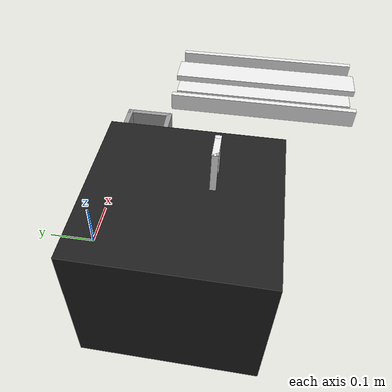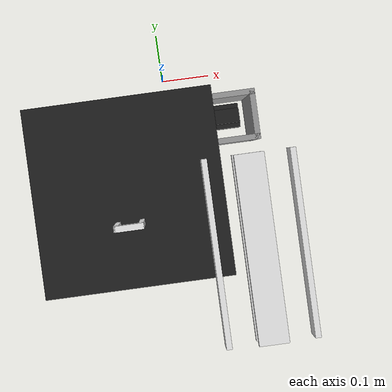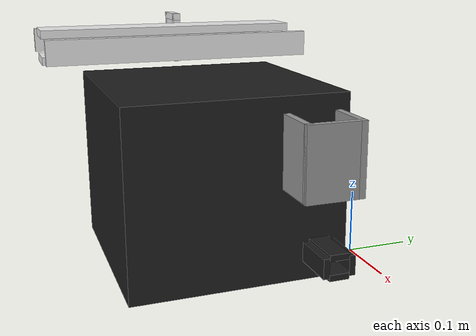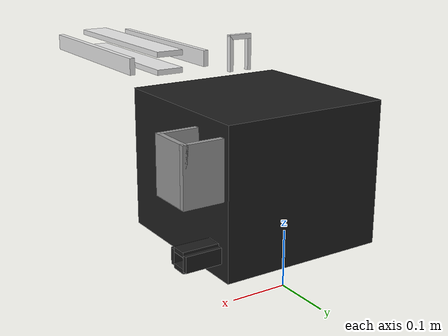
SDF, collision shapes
<?xml version='1.0'?>
<sdf version='1.7'>
  <model name='milk_crate_and_node'>
    <link name='link_0'>
      <inertial>
        <mass>1</mass>
        <inertia>
          <ixx>0.166667</ixx>
          <ixy>0</ixy>
          <ixz>0</ixz>
          <iyy>0.166667</iyy>
          <iyz>0</iyz>
          <izz>0.166667</izz>
        </inertia>
        <pose>0 0 0 0 -0 0</pose>
      </inertial>
      <pose>0.11 -0.15 0.2 0 -0 0</pose>
      <gravity>1</gravity>
      <self_collide>0</self_collide>
      <kinematic>0</kinematic>
      <enable_wind>0</enable_wind>
      <visual name='visual'>
        <pose>0 0 0 0 -0 0</pose>
        <geometry>
          <box>
            <size>0.09 0.01 0.11</size>
          </box>
        </geometry>
        <material>
          <lighting>1</lighting>
          <script>
            <uri>file://media/materials/scripts/gazebo.material</uri>
            <name>Gazebo/Grey</name>
          </script>
          <shader type='pixel'>
            <normal_map>__default__</normal_map>
          </shader>
          <ambient>0.3 0.3 0.3 1</ambient>
          <diffuse>0.7 0.7 0.7 1</diffuse>
          <specular>0.01 0.01 0.01 1</specular>
          <emissive>0 0 0 1</emissive>
        </material>
        <transparency>0</transparency>
        <cast_shadows>1</cast_shadows>
      </visual>
      <collision name='collision'>
        <laser_retro>0</laser_retro>
        <max_contacts>10</max_contacts>
        <pose>0 0 0 0 -0 0</pose>
        <geometry>
          <box>
            <size>0.09 0.01 0.11</size>
          </box>
        </geometry>
        <surface>
          <friction>
            <ode>
              <mu>1</mu>
              <mu2>1</mu2>
              <fdir1>0 0 0</fdir1>
              <slip1>0</slip1>
              <slip2>0</slip2>
            </ode>
            <torsional>
              <coefficient>1</coefficient>
              <patch_radius>0</patch_radius>
              <surface_radius>0</surface_radius>
              <use_patch_radius>1</use_patch_radius>
              <ode>
                <slip>0</slip>
              </ode>
            </torsional>
          </friction>
          <bounce>
            <restitution_coefficient>0</restitution_coefficient>
            <threshold>1e+06</threshold>
          </bounce>
          <contact>
            <collide_without_contact>0</collide_without_contact>
            <collide_without_contact_bitmask>1</collide_without_contact_bitmask>
            <collide_bitmask>1</collide_bitmask>
            <ode>
              <soft_cfm>0</soft_cfm>
              <soft_erp>0.2</soft_erp>
              <kp>1e+13</kp>
              <kd>1</kd>
              <max_vel>0.01</max_vel>
              <min_depth>0</min_depth>
            </ode>
            <bullet>
              <split_impulse>1</split_impulse>
              <split_impulse_penetration_threshold>-0.01</split_impulse_penetration_threshold>
              <soft_cfm>0</soft_cfm>
              <soft_erp>0.2</soft_erp>
              <kp>1e+13</kp>
              <kd>1</kd>
            </bullet>
          </contact>
        </surface>
      </collision>
    </link>
    <link name='link_0_clone'>
      <inertial>
        <mass>1</mass>
        <inertia>
          <ixx>0.166667</ixx>
          <ixy>0</ixy>
          <ixz>0</ixz>
          <iyy>0.166667</iyy>
          <iyz>0</iyz>
          <izz>0.166667</izz>
        </inertia>
        <pose>0 0 0 0 -0 0</pose>
      </inertial>
      <pose>0.11 -0.07 0.2 0 -0 0</pose>
      <gravity>1</gravity>
      <self_collide>0</self_collide>
      <kinematic>0</kinematic>
      <enable_wind>0</enable_wind>
      <visual name='visual'>
        <pose>0 0 0 0 -0 0</pose>
        <geometry>
          <box>
            <size>0.09 0.01 0.11</size>
          </box>
        </geometry>
        <material>
          <lighting>1</lighting>
          <script>
            <uri>file://media/materials/scripts/gazebo.material</uri>
            <name>Gazebo/Grey</name>
          </script>
          <shader type='pixel'>
            <normal_map>__default__</normal_map>
          </shader>
          <ambient>0.3 0.3 0.3 1</ambient>
          <diffuse>0.7 0.7 0.7 1</diffuse>
          <specular>0.01 0.01 0.01 1</specular>
          <emissive>0 0 0 1</emissive>
        </material>
        <transparency>0</transparency>
        <cast_shadows>1</cast_shadows>
      </visual>
      <collision name='collision'>
        <laser_retro>0</laser_retro>
        <max_contacts>10</max_contacts>
        <pose>0 0 0 0 -0 0</pose>
        <geometry>
          <box>
            <size>0.09 0.01 0.11</size>
          </box>
        </geometry>
        <surface>
          <friction>
            <ode>
              <mu>1</mu>
              <mu2>1</mu2>
              <fdir1>0 0 0</fdir1>
              <slip1>0</slip1>
              <slip2>0</slip2>
            </ode>
            <torsional>
              <coefficient>1</coefficient>
              <patch_radius>0</patch_radius>
              <surface_radius>0</surface_radius>
              <use_patch_radius>1</use_patch_radius>
              <ode>
                <slip>0</slip>
              </ode>
            </torsional>
          </friction>
          <bounce>
            <restitution_coefficient>0</restitution_coefficient>
            <threshold>1e+06</threshold>
          </bounce>
          <contact>
            <collide_without_contact>0</collide_without_contact>
            <collide_without_contact_bitmask>1</collide_without_contact_bitmask>
            <collide_bitmask>1</collide_bitmask>
            <ode>
              <soft_cfm>0</soft_cfm>
              <soft_erp>0.2</soft_erp>
              <kp>1e+13</kp>
              <kd>1</kd>
              <max_vel>0.01</max_vel>
              <min_depth>0</min_depth>
            </ode>
            <bullet>
              <split_impulse>1</split_impulse>
              <split_impulse_penetration_threshold>-0.01</split_impulse_penetration_threshold>
              <soft_cfm>0</soft_cfm>
              <soft_erp>0.2</soft_erp>
              <kp>1e+13</kp>
              <kd>1</kd>
            </bullet>
          </contact>
        </surface>
      </collision>
    </link>
    <link name='link_0_clone_0'>
      <inertial>
        <mass>1</mass>
        <inertia>
          <ixx>0.166667</ixx>
          <ixy>0</ixy>
          <ixz>0</ixz>
          <iyy>0.166667</iyy>
          <iyz>0</iyz>
          <izz>0.166667</izz>
        </inertia>
        <pose>0 0 0 0 -0 0</pose>
      </inertial>
      <pose>0.15 -0.11 0.2 0 -0 1.5708</pose>
      <gravity>1</gravity>
      <self_collide>0</self_collide>
      <kinematic>0</kinematic>
      <enable_wind>0</enable_wind>
      <visual name='visual'>
        <pose>0 0 0 0 -0 0</pose>
        <geometry>
          <box>
            <size>0.09 0.01 0.11</size>
          </box>
        </geometry>
        <material>
          <lighting>1</lighting>
          <script>
            <uri>file://media/materials/scripts/gazebo.material</uri>
            <name>Gazebo/Grey</name>
          </script>
          <shader type='pixel'>
            <normal_map>__default__</normal_map>
          </shader>
          <ambient>0.3 0.3 0.3 1</ambient>
          <diffuse>0.7 0.7 0.7 1</diffuse>
          <specular>0.01 0.01 0.01 1</specular>
          <emissive>0 0 0 1</emissive>
        </material>
        <transparency>0</transparency>
        <cast_shadows>1</cast_shadows>
      </visual>
      <collision name='collision'>
        <laser_retro>0</laser_retro>
        <max_contacts>10</max_contacts>
        <pose>0 0 0 0 -0 0</pose>
        <geometry>
          <box>
            <size>0.09 0.01 0.11</size>
          </box>
        </geometry>
        <surface>
          <friction>
            <ode>
              <mu>1</mu>
              <mu2>1</mu2>
              <fdir1>0 0 0</fdir1>
              <slip1>0</slip1>
              <slip2>0</slip2>
            </ode>
            <torsional>
              <coefficient>1</coefficient>
              <patch_radius>0</patch_radius>
              <surface_radius>0</surface_radius>
              <use_patch_radius>1</use_patch_radius>
              <ode>
                <slip>0</slip>
              </ode>
            </torsional>
          </friction>
          <bounce>
            <restitution_coefficient>0</restitution_coefficient>
            <threshold>1e+06</threshold>
          </bounce>
          <contact>
            <collide_without_contact>0</collide_without_contact>
            <collide_without_contact_bitmask>1</collide_without_contact_bitmask>
            <collide_bitmask>1</collide_bitmask>
            <ode>
              <soft_cfm>0</soft_cfm>
              <soft_erp>0.2</soft_erp>
              <kp>1e+13</kp>
              <kd>1</kd>
              <max_vel>0.01</max_vel>
              <min_depth>0</min_depth>
            </ode>
            <bullet>
              <split_impulse>1</split_impulse>
              <split_impulse_penetration_threshold>-0.01</split_impulse_penetration_threshold>
              <soft_cfm>0</soft_cfm>
              <soft_erp>0.2</soft_erp>
              <kp>1e+13</kp>
              <kd>1</kd>
            </bullet>
          </contact>
        </surface>
      </collision>
    </link>
    <link name='part_1'>
      <inertial>
        <pose>0 0 0 0 -0 0</pose>
        <mass>1e+12</mass>
        <inertia>
          <ixx>1.55914e+10</ixx>
          <ixy>0</ixy>
          <ixz>0</ixz>
          <iyy>1.55914e+10</iyy>
          <iyz>0</iyz>
          <izz>1.8172e+10</izz>
        </inertia>
      </inertial>
      <self_collide>0</self_collide>
      <enable_wind>0</enable_wind>
      <kinematic>0</kinematic>
      <pose>-0.087877 -0.216714 0 0 -0 0</pose>
      <gravity>1</gravity>
      <is_static>1</is_static>
      <frame name='part_1_frame'>
        <pose>0 0 0 0 -0 0</pose>
      </frame>
      <visual name='assembly_visual'>
        <pose>0 0 0 0 -0 0</pose>
        <geometry>
          <mesh>
            <uri>/home/eer/Documents/Software_2024/ROS2/models/milk_crate_and_node/milk_crate_and_node_visual.stl</uri>
            <scale>1 1 1</scale>
          </mesh>
        </geometry>
        <material>
          <shader type='pixel'>
            <normal_map>__default__</normal_map>
          </shader>
          <script>
            <name>Gazebo/Black</name>
            <uri>__default__</uri>
          </script>
          <ambient>0.2 0.2 0.2 1</ambient>
          <diffuse>0.2 0.2 0.2 1</diffuse>
          <specular>0.2 0.2 0.2 1</specular>
          <emissive>0 0 0 1</emissive>
        </material>
        <transparency>0</transparency>
        <cast_shadows>1</cast_shadows>
      </visual>
      <visual name='ModelPreview_23::part_1::visual_3'>
        <pose>0.2 0.14 0.045 1.5708 -0 0</pose>
        <geometry>
          <box>
            <size>0.0702 0.0302 0.0094</size>
          </box>
        </geometry>
        <material>
          <shader type='pixel'>
            <normal_map>__default__</normal_map>
          </shader>
          <script>
            <name>Gazebo/Black</name>
            <uri>__default__</uri>
          </script>
          <ambient>0.2 0.2 0.2 1</ambient>
          <diffuse>0.2 0.2 0.2 1</diffuse>
          <specular>0.2 0.2 0.2 1</specular>
          <emissive>0 0 0 1</emissive>
        </material>
        <transparency>0</transparency>
        <cast_shadows>1</cast_shadows>
      </visual>
      <visual name='ModelPreview_23::part_1::visual_4'>
        <pose>0.2 0.1 0.045 1.5708 -0 0</pose>
        <geometry>
          <box>
            <size>0.0702 0.0302 0.0094</size>
          </box>
        </geometry>
        <material>
          <shader type='pixel'>
            <normal_map>__default__</normal_map>
          </shader>
          <script>
            <name>Gazebo/Black</name>
            <uri>__default__</uri>
          </script>
          <ambient>0.2 0.2 0.2 1</ambient>
          <diffuse>0.2 0.2 0.2 1</diffuse>
          <specular>0.2 0.2 0.2 1</specular>
          <emissive>0 0 0 1</emissive>
        </material>
        <transparency>0</transparency>
        <cast_shadows>1</cast_shadows>
      </visual>
      <visual name='ModelPreview_23::part_1::visual_1'>
        <pose>0.2 0.12 0.06 0 -0 0</pose>
        <geometry>
          <box>
            <size>0.0702 0.0302 0.0094</size>
          </box>
        </geometry>
        <material>
          <shader type='pixel'>
            <normal_map>__default__</normal_map>
          </shader>
          <script>
            <name>Gazebo/Black</name>
            <uri>__default__</uri>
          </script>
          <ambient>0.2 0.2 0.2 1</ambient>
          <diffuse>0.2 0.2 0.2 1</diffuse>
          <specular>0.2 0.2 0.2 1</specular>
          <emissive>0 0 0 1</emissive>
        </material>
        <transparency>0</transparency>
        <cast_shadows>1</cast_shadows>
      </visual>
      <visual name='ModelPreview_23::part_1::visual_2'>
        <pose>0.2 0.12 0.03 0 -0 0</pose>
        <geometry>
          <box>
            <size>0.0702 0.0302 0.0094</size>
          </box>
        </geometry>
        <material>
          <shader type='pixel'>
            <normal_map>__default__</normal_map>
          </shader>
          <script>
            <name>Gazebo/Black</name>
            <uri>__default__</uri>
          </script>
          <ambient>0.2 0.2 0.2 1</ambient>
          <diffuse>0.2 0.2 0.2 1</diffuse>
          <specular>0.2 0.2 0.2 1</specular>
          <emissive>0 0 0 1</emissive>
        </material>
        <transparency>0</transparency>
        <cast_shadows>1</cast_shadows>
      </visual>
      <collision name='collision_6'>
        <laser_retro>0</laser_retro>
        <max_contacts>10</max_contacts>
        <pose>0.2 0.1 0.045 1.5708 -0 0</pose>
        <geometry>
          <box>
            <size>0.0702 0.0302 0.0094</size>
          </box>
        </geometry>
        <surface>
          <friction>
            <ode>
              <mu>1</mu>
              <mu2>1</mu2>
              <fdir1>0 0 0</fdir1>
              <slip1>0</slip1>
              <slip2>0</slip2>
            </ode>
            <torsional>
              <coefficient>1</coefficient>
              <patch_radius>0</patch_radius>
              <surface_radius>0</surface_radius>
              <use_patch_radius>1</use_patch_radius>
              <ode>
                <slip>0</slip>
              </ode>
            </torsional>
          </friction>
          <bounce>
            <restitution_coefficient>0</restitution_coefficient>
            <threshold>1e+06</threshold>
          </bounce>
          <contact>
            <collide_without_contact>0</collide_without_contact>
            <collide_without_contact_bitmask>1</collide_without_contact_bitmask>
            <collide_bitmask>1</collide_bitmask>
            <ode>
              <soft_cfm>0</soft_cfm>
              <soft_erp>0.2</soft_erp>
              <kp>1e+13</kp>
              <kd>1</kd>
              <max_vel>0.01</max_vel>
              <min_depth>0</min_depth>
            </ode>
            <bullet>
              <split_impulse>1</split_impulse>
              <split_impulse_penetration_threshold>-0.01</split_impulse_penetration_threshold>
              <soft_cfm>0</soft_cfm>
              <soft_erp>0.2</soft_erp>
              <kp>1e+13</kp>
              <kd>1</kd>
            </bullet>
          </contact>
        </surface>
      </collision>
      <collision name='collision_3'>
        <laser_retro>0</laser_retro>
        <max_contacts>10</max_contacts>
        <pose>0.2 0.12 0.03 0 -0 0</pose>
        <geometry>
          <box>
            <size>0.0702 0.0302 0.0094</size>
          </box>
        </geometry>
        <surface>
          <friction>
            <ode>
              <mu>1</mu>
              <mu2>1</mu2>
              <fdir1>0 0 0</fdir1>
              <slip1>0</slip1>
              <slip2>0</slip2>
            </ode>
            <torsional>
              <coefficient>1</coefficient>
              <patch_radius>0</patch_radius>
              <surface_radius>0</surface_radius>
              <use_patch_radius>1</use_patch_radius>
              <ode>
                <slip>0</slip>
              </ode>
            </torsional>
          </friction>
          <bounce>
            <restitution_coefficient>0</restitution_coefficient>
            <threshold>1e+06</threshold>
          </bounce>
          <contact>
            <collide_without_contact>0</collide_without_contact>
            <collide_without_contact_bitmask>1</collide_without_contact_bitmask>
            <collide_bitmask>1</collide_bitmask>
            <ode>
              <soft_cfm>0</soft_cfm>
              <soft_erp>0.2</soft_erp>
              <kp>1e+13</kp>
              <kd>1</kd>
              <max_vel>0.01</max_vel>
              <min_depth>0</min_depth>
            </ode>
            <bullet>
              <split_impulse>1</split_impulse>
              <split_impulse_penetration_threshold>-0.01</split_impulse_penetration_threshold>
              <soft_cfm>0</soft_cfm>
              <soft_erp>0.2</soft_erp>
              <kp>1e+13</kp>
              <kd>1</kd>
            </bullet>
          </contact>
        </surface>
      </collision>
      <collision name='collision_5'>
        <laser_retro>0</laser_retro>
        <max_contacts>10</max_contacts>
        <pose>0.2 0.14 0.045 1.5708 -0 0</pose>
        <geometry>
          <box>
            <size>0.0702 0.0302 0.0094</size>
          </box>
        </geometry>
        <surface>
          <friction>
            <ode>
              <mu>1</mu>
              <mu2>1</mu2>
              <fdir1>0 0 0</fdir1>
              <slip1>0</slip1>
              <slip2>0</slip2>
            </ode>
            <torsional>
              <coefficient>1</coefficient>
              <patch_radius>0</patch_radius>
              <surface_radius>0</surface_radius>
              <use_patch_radius>1</use_patch_radius>
              <ode>
                <slip>0</slip>
              </ode>
            </torsional>
          </friction>
          <bounce>
            <restitution_coefficient>0</restitution_coefficient>
            <threshold>1e+06</threshold>
          </bounce>
          <contact>
            <collide_without_contact>0</collide_without_contact>
            <collide_without_contact_bitmask>1</collide_without_contact_bitmask>
            <collide_bitmask>1</collide_bitmask>
            <ode>
              <soft_cfm>0</soft_cfm>
              <soft_erp>0.2</soft_erp>
              <kp>1e+13</kp>
              <kd>1</kd>
              <max_vel>0.01</max_vel>
              <min_depth>0</min_depth>
            </ode>
            <bullet>
              <split_impulse>1</split_impulse>
              <split_impulse_penetration_threshold>-0.01</split_impulse_penetration_threshold>
              <soft_cfm>0</soft_cfm>
              <soft_erp>0.2</soft_erp>
              <kp>1e+13</kp>
              <kd>1</kd>
            </bullet>
          </contact>
        </surface>
      </collision>
      <collision name='collision_2'>
        <laser_retro>0</laser_retro>
        <max_contacts>10</max_contacts>
        <pose>0 0 0.14 0 -0 0</pose>
        <geometry>
          <box>
            <size>0.3302 0.3302 0.2794</size>
          </box>
        </geometry>
        <surface>
          <friction>
            <ode>
              <mu>1</mu>
              <mu2>1</mu2>
              <fdir1>0 0 0</fdir1>
              <slip1>0</slip1>
              <slip2>0</slip2>
            </ode>
            <torsional>
              <coefficient>1</coefficient>
              <patch_radius>0</patch_radius>
              <surface_radius>0</surface_radius>
              <use_patch_radius>1</use_patch_radius>
              <ode>
                <slip>0</slip>
              </ode>
            </torsional>
          </friction>
          <bounce>
            <restitution_coefficient>0</restitution_coefficient>
            <threshold>1e+06</threshold>
          </bounce>
          <contact>
            <collide_without_contact>0</collide_without_contact>
            <collide_without_contact_bitmask>1</collide_without_contact_bitmask>
            <collide_bitmask>1</collide_bitmask>
            <ode>
              <soft_cfm>0</soft_cfm>
              <soft_erp>0.2</soft_erp>
              <kp>1e+13</kp>
              <kd>1</kd>
              <max_vel>0.01</max_vel>
              <min_depth>0</min_depth>
            </ode>
            <bullet>
              <split_impulse>1</split_impulse>
              <split_impulse_penetration_threshold>-0.01</split_impulse_penetration_threshold>
              <soft_cfm>0</soft_cfm>
              <soft_erp>0.2</soft_erp>
              <kp>1e+13</kp>
              <kd>1</kd>
            </bullet>
          </contact>
        </surface>
      </collision>
      <collision name='collision_4'>
        <laser_retro>0</laser_retro>
        <max_contacts>10</max_contacts>
        <pose>0.2 0.12 0.06 0 -0 0</pose>
        <geometry>
          <box>
            <size>0.0702 0.0302 0.0094</size>
          </box>
        </geometry>
        <surface>
          <friction>
            <ode>
              <mu>1</mu>
              <mu2>1</mu2>
              <fdir1>0 0 0</fdir1>
              <slip1>0</slip1>
              <slip2>0</slip2>
            </ode>
            <torsional>
              <coefficient>1</coefficient>
              <patch_radius>0</patch_radius>
              <surface_radius>0</surface_radius>
              <use_patch_radius>1</use_patch_radius>
              <ode>
                <slip>0</slip>
              </ode>
            </torsional>
          </friction>
          <bounce>
            <restitution_coefficient>0</restitution_coefficient>
            <threshold>1e+06</threshold>
          </bounce>
          <contact>
            <collide_without_contact>0</collide_without_contact>
            <collide_without_contact_bitmask>1</collide_without_contact_bitmask>
            <collide_bitmask>1</collide_bitmask>
            <ode>
              <soft_cfm>0</soft_cfm>
              <soft_erp>0.2</soft_erp>
              <kp>1e+13</kp>
              <kd>1</kd>
              <max_vel>0.01</max_vel>
              <min_depth>0</min_depth>
            </ode>
            <bullet>
              <split_impulse>1</split_impulse>
              <split_impulse_penetration_threshold>-0.01</split_impulse_penetration_threshold>
              <soft_cfm>0</soft_cfm>
              <soft_erp>0.2</soft_erp>
              <kp>1e+13</kp>
              <kd>1</kd>
            </bullet>
          </contact>
        </surface>
      </collision>
    </link>
    <model name='multifunction_node'>
      <pose>0 -0.05 0.3 0 -0 0</pose>
      <link name='part_1'>
        <inertial>
          <pose>0 0 0 0 -0 0</pose>
          <mass>1e+12</mass>
          <inertia>
            <ixx>1.34359e+07</ixx>
            <ixy>0</ixy>
            <ixz>0</ixz>
            <iyy>4.04733e+08</iyy>
            <iyz>0</iyz>
            <izz>4.07964e+08</izz>
          </inertia>
        </inertial>
        <self_collide>0</self_collide>
        <enable_wind>0</enable_wind>
        <kinematic>0</kinematic>
        <pose>-0.087877 -0.216714 0 3.14159 -1.57079 3.14159</pose>
        <gravity>1</gravity>
        <visual name='assembly_visual'>
          <pose>0 0 0 0 -0 0</pose>
          <geometry>
            <mesh>
              <uri>/home/eer/Documents/Software_2024/ROS2/models/multifunction_node/multifunction_node_visual.stl</uri>
              <scale>1 1 1</scale>
            </mesh>
          </geometry>
          <material>
            <shader type='pixel'>
              <normal_map>__default__</normal_map>
            </shader>
            <script>
              <name>Gazebo/White</name>
              <uri>__default__</uri>
            </script>
            <ambient>0.9 0.9 0.9 1</ambient>
            <diffuse>0.9 0.9 0.9 1</diffuse>
            <specular>0.9 0.9 0.9 1</specular>
            <emissive>0 0 0 1</emissive>
          </material>
          <transparency>0</transparency>
          <cast_shadows>1</cast_shadows>
        </visual>
        <collision name='collision_1'>
          <laser_retro>0</laser_retro>
          <max_contacts>10</max_contacts>
          <pose>0.05 0 0.02 0 -0 0</pose>
          <geometry>
            <box>
              <size>0.06925 0.01 0.007825</size>
            </box>
          </geometry>
          <surface>
            <friction>
              <ode>
                <mu>1</mu>
                <mu2>1</mu2>
                <fdir1>0 0 0</fdir1>
                <slip1>0</slip1>
                <slip2>0</slip2>
              </ode>
              <torsional>
                <coefficient>1</coefficient>
                <patch_radius>0</patch_radius>
                <surface_radius>0</surface_radius>
                <use_patch_radius>1</use_patch_radius>
                <ode>
                  <slip>0</slip>
                </ode>
              </torsional>
            </friction>
            <bounce>
              <restitution_coefficient>0</restitution_coefficient>
              <threshold>1e+06</threshold>
            </bounce>
            <contact>
              <collide_without_contact>0</collide_without_contact>
              <collide_without_contact_bitmask>1</collide_without_contact_bitmask>
              <collide_bitmask>1</collide_bitmask>
              <ode>
                <soft_cfm>0</soft_cfm>
                <soft_erp>0.2</soft_erp>
                <kp>1e+13</kp>
                <kd>1</kd>
                <max_vel>0.01</max_vel>
                <min_depth>0</min_depth>
              </ode>
              <bullet>
                <split_impulse>1</split_impulse>
                <split_impulse_penetration_threshold>-0.01</split_impulse_penetration_threshold>
                <soft_cfm>0</soft_cfm>
                <soft_erp>0.2</soft_erp>
                <kp>1e+13</kp>
                <kd>1</kd>
              </bullet>
            </contact>
          </surface>
        </collision>

      <collision name='collision_7'>
        <laser_retro>0</laser_retro>
        <max_contacts>10</max_contacts>
        <pose>0.065 -0.06 -0.27 3.14159 1.57079 3.14159</pose>
        <geometry>
          <box>
            <size>0.00925 0.3 0.027825</size>
          </box>
        </geometry>
        <surface>
          <friction>
            <ode>
              <mu>1</mu>
              <mu2>1</mu2>
              <fdir1>0 0 0</fdir1>
              <slip1>0</slip1>
              <slip2>0</slip2>
            </ode>
            <torsional>
              <coefficient>1</coefficient>
              <patch_radius>0</patch_radius>
              <surface_radius>0</surface_radius>
              <use_patch_radius>1</use_patch_radius>
              <ode>
                <slip>0</slip>
              </ode>
            </torsional>
          </friction>
          <bounce>
            <restitution_coefficient>0</restitution_coefficient>
            <threshold>1e+06</threshold>
          </bounce>
          <contact>
            <collide_without_contact>0</collide_without_contact>
            <collide_without_contact_bitmask>1</collide_without_contact_bitmask>
            <collide_bitmask>1</collide_bitmask>
            <ode>
              <soft_cfm>0</soft_cfm>
              <soft_erp>0.2</soft_erp>
              <kp>1e+13</kp>
              <kd>1</kd>
              <max_vel>0.01</max_vel>
              <min_depth>0</min_depth>
            </ode>
            <bullet>
              <split_impulse>1</split_impulse>
              <split_impulse_penetration_threshold>-0.01</split_impulse_penetration_threshold>
              <soft_cfm>0</soft_cfm>
              <soft_erp>0.2</soft_erp>
              <kp>1e+13</kp>
              <kd>1</kd>
            </bullet>
          </contact>
        </surface>
      </collision>
      <collision name='collision_6'>
        <laser_retro>0</laser_retro>
        <max_contacts>10</max_contacts>
        <pose>0.065 -0.06 -0.13 3.14159 1.57079 3.14159</pose>
        <geometry>
          <box>
            <size>0.00925 0.3 0.027825</size>
          </box>
        </geometry>
        <surface>
          <friction>
            <ode>
              <mu>1</mu>
              <mu2>1</mu2>
              <fdir1>0 0 0</fdir1>
              <slip1>0</slip1>
              <slip2>0</slip2>
            </ode>
            <torsional>
              <coefficient>1</coefficient>
              <patch_radius>0</patch_radius>
              <surface_radius>0</surface_radius>
              <use_patch_radius>1</use_patch_radius>
              <ode>
                <slip>0</slip>
              </ode>
            </torsional>
          </friction>
          <bounce>
            <restitution_coefficient>0</restitution_coefficient>
            <threshold>1e+06</threshold>
          </bounce>
          <contact>
            <collide_without_contact>0</collide_without_contact>
            <collide_without_contact_bitmask>1</collide_without_contact_bitmask>
            <collide_bitmask>1</collide_bitmask>
            <ode>
              <soft_cfm>0</soft_cfm>
              <soft_erp>0.2</soft_erp>
              <kp>1e+13</kp>
              <kd>1</kd>
              <max_vel>0.01</max_vel>
              <min_depth>0</min_depth>
            </ode>
            <bullet>
              <split_impulse>1</split_impulse>
              <split_impulse_penetration_threshold>-0.01</split_impulse_penetration_threshold>
              <soft_cfm>0</soft_cfm>
              <soft_erp>0.2</soft_erp>
              <kp>1e+13</kp>
              <kd>1</kd>
            </bullet>
          </contact>
        </surface>
      </collision>
        <collision name='collision_2'>
          <laser_retro>0</laser_retro>
          <max_contacts>10</max_contacts>
          <pose>0.08 0 0 0 -0 0</pose>
          <geometry>
            <box>
              <size>0.00925 0.01 0.047825</size>
            </box>
          </geometry>
          <surface>
            <friction>
              <ode>
                <mu>1</mu>
                <mu2>1</mu2>
                <fdir1>0 0 0</fdir1>
                <slip1>0</slip1>
                <slip2>0</slip2>
              </ode>
              <torsional>
                <coefficient>1</coefficient>
                <patch_radius>0</patch_radius>
                <surface_radius>0</surface_radius>
                <use_patch_radius>1</use_patch_radius>
                <ode>
                  <slip>0</slip>
                </ode>
              </torsional>
            </friction>
            <bounce>
              <restitution_coefficient>0</restitution_coefficient>
              <threshold>1e+06</threshold>
            </bounce>
            <contact>
              <collide_without_contact>0</collide_without_contact>
              <collide_without_contact_bitmask>1</collide_without_contact_bitmask>
              <collide_bitmask>1</collide_bitmask>
              <ode>
                <soft_cfm>0</soft_cfm>
                <soft_erp>0.2</soft_erp>
                <kp>1e+13</kp>
                <kd>1</kd>
                <max_vel>0.01</max_vel>
                <min_depth>0</min_depth>
              </ode>
              <bullet>
                <split_impulse>1</split_impulse>
                <split_impulse_penetration_threshold>-0.01</split_impulse_penetration_threshold>
                <soft_cfm>0</soft_cfm>
                <soft_erp>0.2</soft_erp>
                <kp>1e+13</kp>
                <kd>1</kd>
              </bullet>
            </contact>
          </surface>
        </collision>
        <collision name='collision_4'>
          <laser_retro>0</laser_retro>
          <max_contacts>10</max_contacts>
          <pose>0.05 -0.06 -0.2 0 -0 0</pose>
          <geometry>
            <box>
              <size>0.00925 0.3 0.047825</size>
            </box>
          </geometry>
          <surface>
            <friction>
              <ode>
                <mu>1</mu>
                <mu2>1</mu2>
                <fdir1>0 0 0</fdir1>
                <slip1>0</slip1>
                <slip2>0</slip2>
              </ode>
              <torsional>
                <coefficient>1</coefficient>
                <patch_radius>0</patch_radius>
                <surface_radius>0</surface_radius>
                <use_patch_radius>1</use_patch_radius>
                <ode>
                  <slip>0</slip>
                </ode>
              </torsional>
            </friction>
            <bounce>
              <restitution_coefficient>0</restitution_coefficient>
              <threshold>1e+06</threshold>
            </bounce>
            <contact>
              <collide_without_contact>0</collide_without_contact>
              <collide_without_contact_bitmask>1</collide_without_contact_bitmask>
              <collide_bitmask>1</collide_bitmask>
              <ode>
                <soft_cfm>0</soft_cfm>
                <soft_erp>0.2</soft_erp>
                <kp>1e+13</kp>
                <kd>1</kd>
                <max_vel>0.01</max_vel>
                <min_depth>0</min_depth>
              </ode>
              <bullet>
                <split_impulse>1</split_impulse>
                <split_impulse_penetration_threshold>-0.01</split_impulse_penetration_threshold>
                <soft_cfm>0</soft_cfm>
                <soft_erp>0.2</soft_erp>
                <kp>1e+13</kp>
                <kd>1</kd>
              </bullet>
            </contact>
          </surface>
        </collision>
        <collision name='collision_5'>
          <laser_retro>0</laser_retro>
          <max_contacts>10</max_contacts>
          <pose>0.08 -0.06 -0.2 0 -0 0</pose>
          <geometry>
            <box>
              <size>0.00925 0.3 0.047825</size>
            </box>
          </geometry>
          <surface>
            <friction>
              <ode>
                <mu>1</mu>
                <mu2>1</mu2>
                <fdir1>0 0 0</fdir1>
                <slip1>0</slip1>
                <slip2>0</slip2>
              </ode>
              <torsional>
                <coefficient>1</coefficient>
                <patch_radius>0</patch_radius>
                <surface_radius>0</surface_radius>
                <use_patch_radius>1</use_patch_radius>
                <ode>
                  <slip>0</slip>
                </ode>
              </torsional>
            </friction>
            <bounce>
              <restitution_coefficient>0</restitution_coefficient>
              <threshold>1e+06</threshold>
            </bounce>
            <contact>
              <collide_without_contact>0</collide_without_contact>
              <collide_without_contact_bitmask>1</collide_without_contact_bitmask>
              <collide_bitmask>1</collide_bitmask>
              <ode>
                <soft_cfm>0</soft_cfm>
                <soft_erp>0.2</soft_erp>
                <kp>1e+13</kp>
                <kd>1</kd>
                <max_vel>0.01</max_vel>
                <min_depth>0</min_depth>
              </ode>
              <bullet>
                <split_impulse>1</split_impulse>
                <split_impulse_penetration_threshold>-0.01</split_impulse_penetration_threshold>
                <soft_cfm>0</soft_cfm>
                <soft_erp>0.2</soft_erp>
                <kp>1e+13</kp>
                <kd>1</kd>
              </bullet>
            </contact>
          </surface>
        </collision>
        <collision name='collision_3'>
          <laser_retro>0</laser_retro>
          <max_contacts>10</max_contacts>
          <pose>0.05 0 -0.02 0 -0 0</pose>
          <geometry>
            <box>
              <size>0.06925 0.01 0.007825</size>
            </box>
          </geometry>
          <surface>
            <friction>
              <ode>
                <mu>1</mu>
                <mu2>1</mu2>
                <fdir1>0 0 0</fdir1>
                <slip1>0</slip1>
                <slip2>0</slip2>
              </ode>
              <torsional>
                <coefficient>1</coefficient>
                <patch_radius>0</patch_radius>
                <surface_radius>0</surface_radius>
                <use_patch_radius>1</use_patch_radius>
                <ode>
                  <slip>0</slip>
                </ode>
              </torsional>
            </friction>
            <bounce>
              <restitution_coefficient>0</restitution_coefficient>
              <threshold>1e+06</threshold>
            </bounce>
            <contact>
              <collide_without_contact>0</collide_without_contact>
              <collide_without_contact_bitmask>1</collide_without_contact_bitmask>
              <collide_bitmask>1</collide_bitmask>
              <ode>
                <soft_cfm>0</soft_cfm>
                <soft_erp>0.2</soft_erp>
                <kp>1e+13</kp>
                <kd>1</kd>
                <max_vel>0.01</max_vel>
                <min_depth>0</min_depth>
              </ode>
              <bullet>
                <split_impulse>1</split_impulse>
                <split_impulse_penetration_threshold>-0.01</split_impulse_penetration_threshold>
                <soft_cfm>0</soft_cfm>
                <soft_erp>0.2</soft_erp>
                <kp>1e+13</kp>
                <kd>1</kd>
              </bullet>
            </contact>
          </surface>
        </collision>
        <is_static>1</is_static>
        <frame name='part_1_frame'>
          <pose>0 0 0 0 -0 0</pose>
        </frame>
      </link>
      <static>1</static>
      <allow_auto_disable>1</allow_auto_disable>
    </model>
    <joint name='part_1_JOINT_0' type='fixed'>
      <parent>part_1</parent>
      <child>link_0</child>
      <pose>0 0 0 0 -0 0</pose>
      <physics>
        <ode>
          <limit>
            <cfm>0</cfm>
            <erp>0.2</erp>
          </limit>
          <suspension>
            <cfm>0</cfm>
            <erp>0.2</erp>
          </suspension>
        </ode>
      </physics>
    </joint>
    <joint name='part_1_JOINT_1' type='fixed'>
      <parent>part_1</parent>
      <child>link_0_clone</child>
      <pose>0 0 0 0 -0 0</pose>
      <physics>
        <ode>
          <limit>
            <cfm>0</cfm>
            <erp>0.2</erp>
          </limit>
          <suspension>
            <cfm>0</cfm>
            <erp>0.2</erp>
          </suspension>
        </ode>
      </physics>
    </joint>
    <joint name='part_1_JOINT_2' type='revolute'>
      <parent>part_1</parent>
      <child>link_0_clone_0</child>
      <pose>0 0 0 0 -0 0</pose>
      <axis>
        <xyz>1 0 0</xyz>
        <limit>
          <lower>-1.79769e+308</lower>
          <upper>1.79769e+308</upper>
          <effort>-1</effort>
          <velocity>-1</velocity>
        </limit>
        <dynamics>
          <spring_reference>0</spring_reference>
          <spring_stiffness>0</spring_stiffness>
          <damping>0</damping>
          <friction>0</friction>
        </dynamics>
      </axis>
      <physics>
        <ode>
          <limit>
            <cfm>0</cfm>
            <erp>0.2</erp>
          </limit>
          <suspension>
            <cfm>0</cfm>
            <erp>0.2</erp>
          </suspension>
        </ode>
      </physics>
    </joint>
    <static>1</static>
    <allow_auto_disable>1</allow_auto_disable>
  </model>
</sdf>
